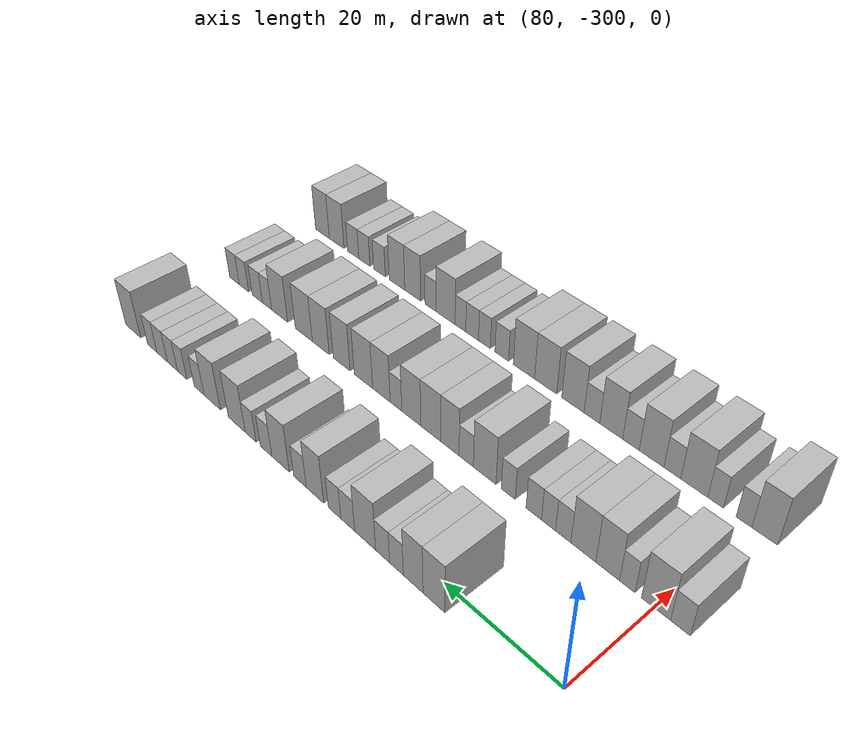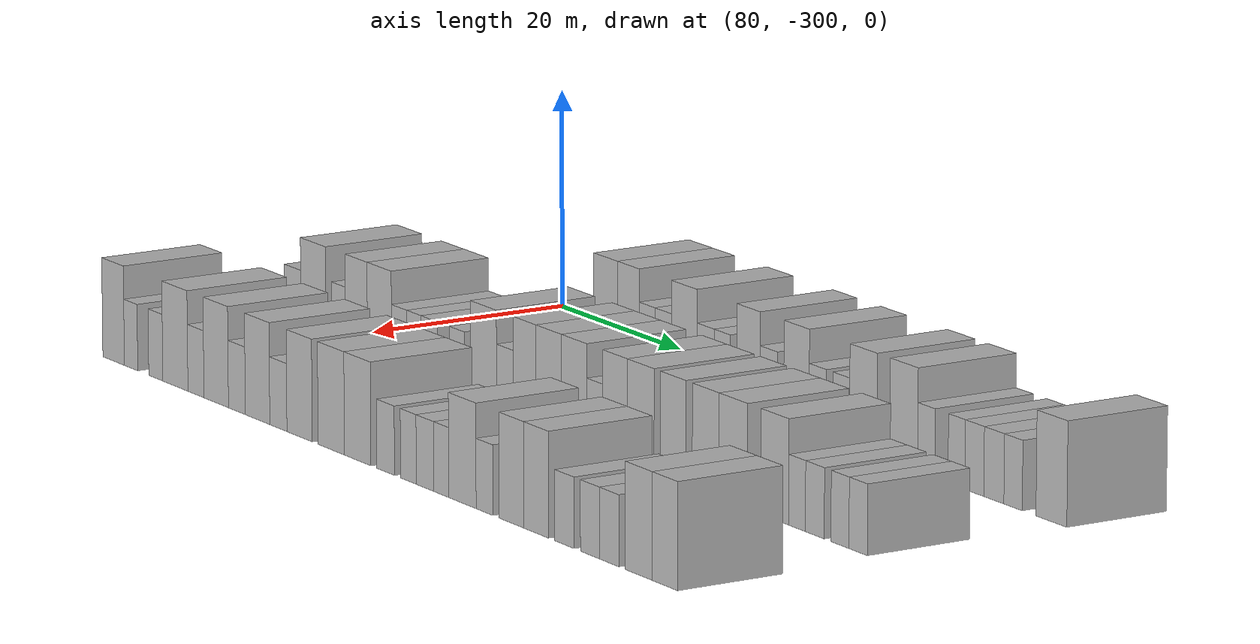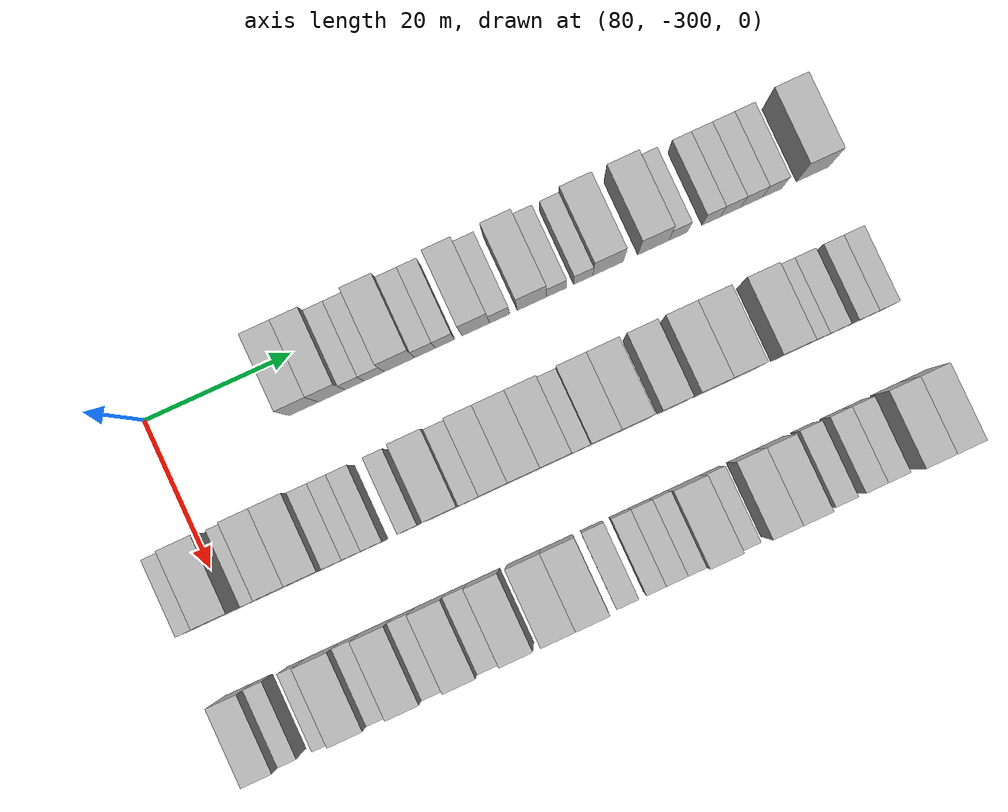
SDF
<sdf version="1.6">
 <world name="default">
  <model name="building_536">
   <static>1</static>
   <pose>82.0000 -281.3900 0 0.000000 0.000000 0.000000</pose>
   <link name="link">
    <pose>0 0 4.50 0 0 0</pose>
    <collision name="collision"><geometry><box><size>10.0000 3.9528 9.0000</size></box></geometry></collision>
    <visual name="visual">
     <cast_shadows>0</cast_shadows>
     <geometry><box><size>10.0000 3.9528 9.0000</size></box></geometry>
     <material>
      <script>
       <uri>model://HANNAS_wall/materials/scripts</uri>
       <uri>model://HANNAS_wall/materials/textures</uri>
       <name>vrc/HANNAS_wall</name>
      </script>
     </material>
    </visual>
   </link>
  </model>
  <model name="building_537">
   <static>1</static>
   <pose>82.0000 -277.6038 0 0.000000 0.000000 0.000000</pose>
   <link name="link">
    <pose>0 0 4.50 0 0 0</pose>
    <collision name="collision"><geometry><box><size>10.0000 3.6196 9.0000</size></box></geometry></collision>
    <visual name="visual">
     <cast_shadows>0</cast_shadows>
     <geometry><box><size>10.0000 3.6196 9.0000</size></box></geometry>
     <material>
      <script>
       <uri>model://HANNAS_wall/materials/scripts</uri>
       <uri>model://HANNAS_wall/materials/textures</uri>
       <name>vrc/HANNAS_wall</name>
      </script>
     </material>
    </visual>
   </link>
  </model>
  <model name="building_538">
   <static>1</static>
   <pose>82.0000 -274.4913 0 0.000000 0.000000 0.000000</pose>
   <link name="link">
    <pose>0 0 3.00 0 0 0</pose>
    <collision name="collision"><geometry><box><size>10.0000 2.6055 6.0000</size></box></geometry></collision>
    <visual name="visual">
     <cast_shadows>0</cast_shadows>
     <geometry><box><size>10.0000 2.6055 6.0000</size></box></geometry>
     <material>
      <script>
       <uri>model://HANNAS_wall/materials/scripts</uri>
       <uri>model://HANNAS_wall/materials/textures</uri>
       <name>vrc/HANNAS_wall</name>
      </script>
     </material>
    </visual>
   </link>
  </model>
  <model name="building_539">
   <static>1</static>
   <pose>82.0000 -271.8295 0 0.000000 0.000000 0.000000</pose>
   <link name="link">
    <pose>0 0 3.00 0 0 0</pose>
    <collision name="collision"><geometry><box><size>10.0000 2.7180 6.0000</size></box></geometry></collision>
    <visual name="visual">
     <cast_shadows>0</cast_shadows>
     <geometry><box><size>10.0000 2.7180 6.0000</size></box></geometry>
     <material>
      <script>
       <uri>model://HANNAS_wall/materials/scripts</uri>
       <uri>model://HANNAS_wall/materials/textures</uri>
       <name>vrc/HANNAS_wall</name>
      </script>
     </material>
    </visual>
   </link>
  </model>
  <model name="building_540">
   <static>1</static>
   <pose>82.0000 -268.3888 0 0.000000 0.000000 0.000000</pose>
   <link name="link">
    <pose>0 0 4.50 0 0 0</pose>
    <collision name="collision"><geometry><box><size>10.0000 4.1634 9.0000</size></box></geometry></collision>
    <visual name="visual">
     <cast_shadows>0</cast_shadows>
     <geometry><box><size>10.0000 4.1634 9.0000</size></box></geometry>
     <material>
      <script>
       <uri>model://HANNAS_wall/materials/scripts</uri>
       <uri>model://HANNAS_wall/materials/textures</uri>
       <name>vrc/HANNAS_wall</name>
      </script>
     </material>
    </visual>
   </link>
  </model>
  <model name="building_541">
   <static>1</static>
   <pose>82.0000 -264.8963 0 0.000000 0.000000 0.000000</pose>
   <link name="link">
    <pose>0 0 3.00 0 0 0</pose>
    <collision name="collision"><geometry><box><size>10.0000 2.8217 6.0000</size></box></geometry></collision>
    <visual name="visual">
     <cast_shadows>0</cast_shadows>
     <geometry><box><size>10.0000 2.8217 6.0000</size></box></geometry>
     <material>
      <script>
       <uri>model://HANNAS_wall/materials/scripts</uri>
       <uri>model://HANNAS_wall/materials/textures</uri>
       <name>vrc/HANNAS_wall</name>
      </script>
     </material>
    </visual>
   </link>
  </model>
  <model name="building_542">
   <static>1</static>
   <pose>82.0000 -262.1801 0 0.000000 0.000000 0.000000</pose>
   <link name="link">
    <pose>0 0 3.00 0 0 0</pose>
    <collision name="collision"><geometry><box><size>10.0000 2.6108 6.0000</size></box></geometry></collision>
    <visual name="visual">
     <cast_shadows>0</cast_shadows>
     <geometry><box><size>10.0000 2.6108 6.0000</size></box></geometry>
     <material>
      <script>
       <uri>model://HANNAS_wall/materials/scripts</uri>
       <uri>model://HANNAS_wall/materials/textures</uri>
       <name>vrc/HANNAS_wall</name>
      </script>
     </material>
    </visual>
   </link>
  </model>
  <model name="building_543">
   <static>1</static>
   <pose>82.0000 -257.9991 0 0.000000 0.000000 0.000000</pose>
   <link name="link">
    <pose>0 0 4.50 0 0 0</pose>
    <collision name="collision"><geometry><box><size>10.0000 3.7512 9.0000</size></box></geometry></collision>
    <visual name="visual">
     <cast_shadows>0</cast_shadows>
     <geometry><box><size>10.0000 3.7512 9.0000</size></box></geometry>
     <material>
      <script>
       <uri>model://HANNAS_wall/materials/scripts</uri>
       <uri>model://HANNAS_wall/materials/textures</uri>
       <name>vrc/HANNAS_wall</name>
      </script>
     </material>
    </visual>
   </link>
  </model>
  <model name="building_544">
   <static>1</static>
   <pose>82.0000 -254.7356 0 0.000000 0.000000 0.000000</pose>
   <link name="link">
    <pose>0 0 3.00 0 0 0</pose>
    <collision name="collision"><geometry><box><size>10.0000 2.7759 6.0000</size></box></geometry></collision>
    <visual name="visual">
     <cast_shadows>0</cast_shadows>
     <geometry><box><size>10.0000 2.7759 6.0000</size></box></geometry>
     <material>
      <script>
       <uri>model://HANNAS_wall/materials/scripts</uri>
       <uri>model://HANNAS_wall/materials/textures</uri>
       <name>vrc/HANNAS_wall</name>
      </script>
     </material>
    </visual>
   </link>
  </model>
  <model name="building_545">
   <static>1</static>
   <pose>82.0000 -250.3482 0 0.000000 0.000000 0.000000</pose>
   <link name="link">
    <pose>0 0 4.50 0 0 0</pose>
    <collision name="collision"><geometry><box><size>10.0000 3.9987 9.0000</size></box></geometry></collision>
    <visual name="visual">
     <cast_shadows>0</cast_shadows>
     <geometry><box><size>10.0000 3.9987 9.0000</size></box></geometry>
     <material>
      <script>
       <uri>model://HANNAS_wall/materials/scripts</uri>
       <uri>model://HANNAS_wall/materials/textures</uri>
       <name>vrc/HANNAS_wall</name>
      </script>
     </material>
    </visual>
   </link>
  </model>
  <model name="building_546">
   <static>1</static>
   <pose>82.0000 -247.0004 0 0.000000 0.000000 0.000000</pose>
   <link name="link">
    <pose>0 0 3.00 0 0 0</pose>
    <collision name="collision"><geometry><box><size>10.0000 2.6969 6.0000</size></box></geometry></collision>
    <visual name="visual">
     <cast_shadows>0</cast_shadows>
     <geometry><box><size>10.0000 2.6969 6.0000</size></box></geometry>
     <material>
      <script>
       <uri>model://HANNAS_wall/materials/scripts</uri>
       <uri>model://HANNAS_wall/materials/textures</uri>
       <name>vrc/HANNAS_wall</name>
      </script>
     </material>
    </visual>
   </link>
  </model>
  <model name="building_547">
   <static>1</static>
   <pose>82.0000 -243.3511 0 0.000000 0.000000 0.000000</pose>
   <link name="link">
    <pose>0 0 3.00 0 0 0</pose>
    <collision name="collision"><geometry><box><size>10.0000 2.6016 6.0000</size></box></geometry></collision>
    <visual name="visual">
     <cast_shadows>0</cast_shadows>
     <geometry><box><size>10.0000 2.6016 6.0000</size></box></geometry>
     <material>
      <script>
       <uri>model://HANNAS_wall/materials/scripts</uri>
       <uri>model://HANNAS_wall/materials/textures</uri>
       <name>vrc/HANNAS_wall</name>
      </script>
     </material>
    </visual>
   </link>
  </model>
  <model name="building_548">
   <static>1</static>
   <pose>82.0000 -239.9524 0 0.000000 0.000000 0.000000</pose>
   <link name="link">
    <pose>0 0 4.50 0 0 0</pose>
    <collision name="collision"><geometry><box><size>10.0000 4.1958 9.0000</size></box></geometry></collision>
    <visual name="visual">
     <cast_shadows>0</cast_shadows>
     <geometry><box><size>10.0000 4.1958 9.0000</size></box></geometry>
     <material>
      <script>
       <uri>model://HANNAS_wall/materials/scripts</uri>
       <uri>model://HANNAS_wall/materials/textures</uri>
       <name>vrc/HANNAS_wall</name>
      </script>
     </material>
    </visual>
   </link>
  </model>
  <model name="building_549">
   <static>1</static>
   <pose>82.0000 -233.7447 0 0.000000 0.000000 0.000000</pose>
   <link name="link">
    <pose>0 0 4.50 0 0 0</pose>
    <collision name="collision"><geometry><box><size>10.0000 4.2197 9.0000</size></box></geometry></collision>
    <visual name="visual">
     <cast_shadows>0</cast_shadows>
     <geometry><box><size>10.0000 4.2197 9.0000</size></box></geometry>
     <material>
      <script>
       <uri>model://HANNAS_wall/materials/scripts</uri>
       <uri>model://HANNAS_wall/materials/textures</uri>
       <name>vrc/HANNAS_wall</name>
      </script>
     </material>
    </visual>
   </link>
  </model>
  <model name="building_550">
   <static>1</static>
   <pose>82.0000 -230.3431 0 0.000000 0.000000 0.000000</pose>
   <link name="link">
    <pose>0 0 3.00 0 0 0</pose>
    <collision name="collision"><geometry><box><size>10.0000 2.5835 6.0000</size></box></geometry></collision>
    <visual name="visual">
     <cast_shadows>0</cast_shadows>
     <geometry><box><size>10.0000 2.5835 6.0000</size></box></geometry>
     <material>
      <script>
       <uri>model://HANNAS_wall/materials/scripts</uri>
       <uri>model://HANNAS_wall/materials/textures</uri>
       <name>vrc/HANNAS_wall</name>
      </script>
     </material>
    </visual>
   </link>
  </model>
  <model name="building_551">
   <static>1</static>
   <pose>82.0000 -225.7896 0 0.000000 0.000000 0.000000</pose>
   <link name="link">
    <pose>0 0 3.00 0 0 0</pose>
    <collision name="collision"><geometry><box><size>10.0000 2.5235 6.0000</size></box></geometry></collision>
    <visual name="visual">
     <cast_shadows>0</cast_shadows>
     <geometry><box><size>10.0000 2.5235 6.0000</size></box></geometry>
     <material>
      <script>
       <uri>model://HANNAS_wall/materials/scripts</uri>
       <uri>model://HANNAS_wall/materials/textures</uri>
       <name>vrc/HANNAS_wall</name>
      </script>
     </material>
    </visual>
   </link>
  </model>
  <model name="building_552">
   <static>1</static>
   <pose>82.0000 -223.1227 0 0.000000 0.000000 0.000000</pose>
   <link name="link">
    <pose>0 0 3.00 0 0 0</pose>
    <collision name="collision"><geometry><box><size>10.0000 2.8103 6.0000</size></box></geometry></collision>
    <visual name="visual">
     <cast_shadows>0</cast_shadows>
     <geometry><box><size>10.0000 2.8103 6.0000</size></box></geometry>
     <material>
      <script>
       <uri>model://HANNAS_wall/materials/scripts</uri>
       <uri>model://HANNAS_wall/materials/textures</uri>
       <name>vrc/HANNAS_wall</name>
      </script>
     </material>
    </visual>
   </link>
  </model>
  <model name="building_553">
   <static>1</static>
   <pose>82.0000 -220.2389 0 0.000000 0.000000 0.000000</pose>
   <link name="link">
    <pose>0 0 3.00 0 0 0</pose>
    <collision name="collision"><geometry><box><size>10.0000 2.9573 6.0000</size></box></geometry></collision>
    <visual name="visual">
     <cast_shadows>0</cast_shadows>
     <geometry><box><size>10.0000 2.9573 6.0000</size></box></geometry>
     <material>
      <script>
       <uri>model://HANNAS_wall/materials/scripts</uri>
       <uri>model://HANNAS_wall/materials/textures</uri>
       <name>vrc/HANNAS_wall</name>
      </script>
     </material>
    </visual>
   </link>
  </model>
  <model name="building_554">
   <static>1</static>
   <pose>82.0000 -217.4114 0 0.000000 0.000000 0.000000</pose>
   <link name="link">
    <pose>0 0 3.00 0 0 0</pose>
    <collision name="collision"><geometry><box><size>10.0000 2.6978 6.0000</size></box></geometry></collision>
    <visual name="visual">
     <cast_shadows>0</cast_shadows>
     <geometry><box><size>10.0000 2.6978 6.0000</size></box></geometry>
     <material>
      <script>
       <uri>model://HANNAS_wall/materials/scripts</uri>
       <uri>model://HANNAS_wall/materials/textures</uri>
       <name>vrc/HANNAS_wall</name>
      </script>
     </material>
    </visual>
   </link>
  </model>
  <model name="building_555">
   <static>1</static>
   <pose>82.0000 -211.8280 0 0.000000 0.000000 0.000000</pose>
   <link name="link">
    <pose>0 0 4.50 0 0 0</pose>
    <collision name="collision"><geometry><box><size>10.0000 4.4690 9.0000</size></box></geometry></collision>
    <visual name="visual">
     <cast_shadows>0</cast_shadows>
     <geometry><box><size>10.0000 4.4690 9.0000</size></box></geometry>
     <material>
      <script>
       <uri>model://HANNAS_wall/materials/scripts</uri>
       <uri>model://HANNAS_wall/materials/textures</uri>
       <name>vrc/HANNAS_wall</name>
      </script>
     </material>
    </visual>
   </link>
  </model>
  <model name="building_715">
   <static>1</static>
   <pose>101.0000 -303.9851 0 0.000000 0.000000 0.000000</pose>
   <link name="link">
    <pose>0 0 3.00 0 0 0</pose>
    <collision name="collision"><geometry><box><size>10.0000 2.9259 6.0000</size></box></geometry></collision>
    <visual name="visual">
     <cast_shadows>0</cast_shadows>
     <geometry><box><size>10.0000 2.9259 6.0000</size></box></geometry>
     <material>
      <script>
       <uri>model://HANNAS_wall/materials/scripts</uri>
       <uri>model://HANNAS_wall/materials/textures</uri>
       <name>vrc/HANNAS_wall</name>
      </script>
     </material>
    </visual>
   </link>
  </model>
  <model name="building_716">
   <static>1</static>
   <pose>101.0000 -300.2934 0 0.000000 0.000000 0.000000</pose>
   <link name="link">
    <pose>0 0 4.50 0 0 0</pose>
    <collision name="collision"><geometry><box><size>10.0000 4.4575 9.0000</size></box></geometry></collision>
    <visual name="visual">
     <cast_shadows>0</cast_shadows>
     <geometry><box><size>10.0000 4.4575 9.0000</size></box></geometry>
     <material>
      <script>
       <uri>model://HANNAS_wall/materials/scripts</uri>
       <uri>model://HANNAS_wall/materials/textures</uri>
       <name>vrc/HANNAS_wall</name>
      </script>
     </material>
    </visual>
   </link>
  </model>
  <model name="building_717">
   <static>1</static>
   <pose>101.0000 -295.8396 0 0.000000 0.000000 0.000000</pose>
   <link name="link">
    <pose>0 0 3.00 0 0 0</pose>
    <collision name="collision"><geometry><box><size>10.0000 2.4501 6.0000</size></box></geometry></collision>
    <visual name="visual">
     <cast_shadows>0</cast_shadows>
     <geometry><box><size>10.0000 2.4501 6.0000</size></box></geometry>
     <material>
      <script>
       <uri>model://HANNAS_wall/materials/scripts</uri>
       <uri>model://HANNAS_wall/materials/textures</uri>
       <name>vrc/HANNAS_wall</name>
      </script>
     </material>
    </visual>
   </link>
  </model>
  <model name="building_718">
   <static>1</static>
   <pose>101.0000 -292.6802 0 0.000000 0.000000 0.000000</pose>
   <link name="link">
    <pose>0 0 4.50 0 0 0</pose>
    <collision name="collision"><geometry><box><size>10.0000 3.8687 9.0000</size></box></geometry></collision>
    <visual name="visual">
     <cast_shadows>0</cast_shadows>
     <geometry><box><size>10.0000 3.8687 9.0000</size></box></geometry>
     <material>
      <script>
       <uri>model://HANNAS_wall/materials/scripts</uri>
       <uri>model://HANNAS_wall/materials/textures</uri>
       <name>vrc/HANNAS_wall</name>
      </script>
     </material>
    </visual>
   </link>
  </model>
  <model name="building_719">
   <static>1</static>
   <pose>101.0000 -288.6435 0 0.000000 0.000000 0.000000</pose>
   <link name="link">
    <pose>0 0 4.50 0 0 0</pose>
    <collision name="collision"><geometry><box><size>10.0000 4.2046 9.0000</size></box></geometry></collision>
    <visual name="visual">
     <cast_shadows>0</cast_shadows>
     <geometry><box><size>10.0000 4.2046 9.0000</size></box></geometry>
     <material>
      <script>
       <uri>model://HANNAS_wall/materials/scripts</uri>
       <uri>model://HANNAS_wall/materials/textures</uri>
       <name>vrc/HANNAS_wall</name>
      </script>
     </material>
    </visual>
   </link>
  </model>
  <model name="building_720">
   <static>1</static>
   <pose>101.0000 -285.2169 0 0.000000 0.000000 0.000000</pose>
   <link name="link">
    <pose>0 0 3.00 0 0 0</pose>
    <collision name="collision"><geometry><box><size>10.0000 2.6486 6.0000</size></box></geometry></collision>
    <visual name="visual">
     <cast_shadows>0</cast_shadows>
     <geometry><box><size>10.0000 2.6486 6.0000</size></box></geometry>
     <material>
      <script>
       <uri>model://HANNAS_wall/materials/scripts</uri>
       <uri>model://HANNAS_wall/materials/textures</uri>
       <name>vrc/HANNAS_wall</name>
      </script>
     </material>
    </visual>
   </link>
  </model>
  <model name="building_721">
   <static>1</static>
   <pose>101.0000 -282.6581 0 0.000000 0.000000 0.000000</pose>
   <link name="link">
    <pose>0 0 3.00 0 0 0</pose>
    <collision name="collision"><geometry><box><size>10.0000 2.4690 6.0000</size></box></geometry></collision>
    <visual name="visual">
     <cast_shadows>0</cast_shadows>
     <geometry><box><size>10.0000 2.4690 6.0000</size></box></geometry>
     <material>
      <script>
       <uri>model://HANNAS_wall/materials/scripts</uri>
       <uri>model://HANNAS_wall/materials/textures</uri>
       <name>vrc/HANNAS_wall</name>
      </script>
     </material>
    </visual>
   </link>
  </model>
  <model name="building_722">
   <static>1</static>
   <pose>101.0000 -280.0353 0 0.000000 0.000000 0.000000</pose>
   <link name="link">
    <pose>0 0 3.00 0 0 0</pose>
    <collision name="collision"><geometry><box><size>10.0000 2.7766 6.0000</size></box></geometry></collision>
    <visual name="visual">
     <cast_shadows>0</cast_shadows>
     <geometry><box><size>10.0000 2.7766 6.0000</size></box></geometry>
     <material>
      <script>
       <uri>model://HANNAS_wall/materials/scripts</uri>
       <uri>model://HANNAS_wall/materials/textures</uri>
       <name>vrc/HANNAS_wall</name>
      </script>
     </material>
    </visual>
   </link>
  </model>
  <model name="building_723">
   <static>1</static>
   <pose>101.0000 -275.3551 0 0.000000 0.000000 0.000000</pose>
   <link name="link">
    <pose>0 0 3.00 0 0 0</pose>
    <collision name="collision"><geometry><box><size>10.0000 2.5836 6.0000</size></box></geometry></collision>
    <visual name="visual">
     <cast_shadows>0</cast_shadows>
     <geometry><box><size>10.0000 2.5836 6.0000</size></box></geometry>
     <material>
      <script>
       <uri>model://HANNAS_wall/materials/scripts</uri>
       <uri>model://HANNAS_wall/materials/textures</uri>
       <name>vrc/HANNAS_wall</name>
      </script>
     </material>
    </visual>
   </link>
  </model>
  <model name="building_724">
   <static>1</static>
   <pose>101.0000 -270.8742 0 0.000000 0.000000 0.000000</pose>
   <link name="link">
    <pose>0 0 4.50 0 0 0</pose>
    <collision name="collision"><geometry><box><size>10.0000 4.3781 9.0000</size></box></geometry></collision>
    <visual name="visual">
     <cast_shadows>0</cast_shadows>
     <geometry><box><size>10.0000 4.3781 9.0000</size></box></geometry>
     <material>
      <script>
       <uri>model://HANNAS_wall/materials/scripts</uri>
       <uri>model://HANNAS_wall/materials/textures</uri>
       <name>vrc/HANNAS_wall</name>
      </script>
     </material>
    </visual>
   </link>
  </model>
  <model name="building_725">
   <static>1</static>
   <pose>101.0000 -267.2647 0 0.000000 0.000000 0.000000</pose>
   <link name="link">
    <pose>0 0 3.00 0 0 0</pose>
    <collision name="collision"><geometry><box><size>10.0000 2.8409 6.0000</size></box></geometry></collision>
    <visual name="visual">
     <cast_shadows>0</cast_shadows>
     <geometry><box><size>10.0000 2.8409 6.0000</size></box></geometry>
     <material>
      <script>
       <uri>model://HANNAS_wall/materials/scripts</uri>
       <uri>model://HANNAS_wall/materials/textures</uri>
       <name>vrc/HANNAS_wall</name>
      </script>
     </material>
    </visual>
   </link>
  </model>
  <model name="building_726">
   <static>1</static>
   <pose>101.0000 -263.9945 0 0.000000 0.000000 0.000000</pose>
   <link name="link">
    <pose>0 0 4.50 0 0 0</pose>
    <collision name="collision"><geometry><box><size>10.0000 3.6994 9.0000</size></box></geometry></collision>
    <visual name="visual">
     <cast_shadows>0</cast_shadows>
     <geometry><box><size>10.0000 3.6994 9.0000</size></box></geometry>
     <material>
      <script>
       <uri>model://HANNAS_wall/materials/scripts</uri>
       <uri>model://HANNAS_wall/materials/textures</uri>
       <name>vrc/HANNAS_wall</name>
      </script>
     </material>
    </visual>
   </link>
  </model>
  <model name="building_727">
   <static>1</static>
   <pose>101.0000 -260.0580 0 0.000000 0.000000 0.000000</pose>
   <link name="link">
    <pose>0 0 4.50 0 0 0</pose>
    <collision name="collision"><geometry><box><size>10.0000 4.1736 9.0000</size></box></geometry></collision>
    <visual name="visual">
     <cast_shadows>0</cast_shadows>
     <geometry><box><size>10.0000 4.1736 9.0000</size></box></geometry>
     <material>
      <script>
       <uri>model://HANNAS_wall/materials/scripts</uri>
       <uri>model://HANNAS_wall/materials/textures</uri>
       <name>vrc/HANNAS_wall</name>
      </script>
     </material>
    </visual>
   </link>
  </model>
  <model name="building_728">
   <static>1</static>
   <pose>101.0000 -255.9211 0 0.000000 0.000000 0.000000</pose>
   <link name="link">
    <pose>0 0 4.50 0 0 0</pose>
    <collision name="collision"><geometry><box><size>10.0000 4.1003 9.0000</size></box></geometry></collision>
    <visual name="visual">
     <cast_shadows>0</cast_shadows>
     <geometry><box><size>10.0000 4.1003 9.0000</size></box></geometry>
     <material>
      <script>
       <uri>model://HANNAS_wall/materials/scripts</uri>
       <uri>model://HANNAS_wall/materials/textures</uri>
       <name>vrc/HANNAS_wall</name>
      </script>
     </material>
    </visual>
   </link>
  </model>
  <model name="building_729">
   <static>1</static>
   <pose>101.0000 -252.5890 0 0.000000 0.000000 0.000000</pose>
   <link name="link">
    <pose>0 0 3.00 0 0 0</pose>
    <collision name="collision"><geometry><box><size>10.0000 2.5638 6.0000</size></box></geometry></collision>
    <visual name="visual">
     <cast_shadows>0</cast_shadows>
     <geometry><box><size>10.0000 2.5638 6.0000</size></box></geometry>
     <material>
      <script>
       <uri>model://HANNAS_wall/materials/scripts</uri>
       <uri>model://HANNAS_wall/materials/textures</uri>
       <name>vrc/HANNAS_wall</name>
      </script>
     </material>
    </visual>
   </link>
  </model>
  <model name="building_730">
   <static>1</static>
   <pose>101.0000 -249.3374 0 0.000000 0.000000 0.000000</pose>
   <link name="link">
    <pose>0 0 4.50 0 0 0</pose>
    <collision name="collision"><geometry><box><size>10.0000 3.9395 9.0000</size></box></geometry></collision>
    <visual name="visual">
     <cast_shadows>0</cast_shadows>
     <geometry><box><size>10.0000 3.9395 9.0000</size></box></geometry>
     <material>
      <script>
       <uri>model://HANNAS_wall/materials/scripts</uri>
       <uri>model://HANNAS_wall/materials/textures</uri>
       <name>vrc/HANNAS_wall</name>
      </script>
     </material>
    </visual>
   </link>
  </model>
  <model name="building_731">
   <static>1</static>
   <pose>101.0000 -245.2372 0 0.000000 0.000000 0.000000</pose>
   <link name="link">
    <pose>0 0 4.50 0 0 0</pose>
    <collision name="collision"><geometry><box><size>10.0000 4.2608 9.0000</size></box></geometry></collision>
    <visual name="visual">
     <cast_shadows>0</cast_shadows>
     <geometry><box><size>10.0000 4.2608 9.0000</size></box></geometry>
     <material>
      <script>
       <uri>model://HANNAS_wall/materials/scripts</uri>
       <uri>model://HANNAS_wall/materials/textures</uri>
       <name>vrc/HANNAS_wall</name>
      </script>
     </material>
    </visual>
   </link>
  </model>
  <model name="building_732">
   <static>1</static>
   <pose>101.0000 -240.1029 0 0.000000 0.000000 0.000000</pose>
   <link name="link">
    <pose>0 0 4.50 0 0 0</pose>
    <collision name="collision"><geometry><box><size>10.0000 4.0078 9.0000</size></box></geometry></collision>
    <visual name="visual">
     <cast_shadows>0</cast_shadows>
     <geometry><box><size>10.0000 4.0078 9.0000</size></box></geometry>
     <material>
      <script>
       <uri>model://HANNAS_wall/materials/scripts</uri>
       <uri>model://HANNAS_wall/materials/textures</uri>
       <name>vrc/HANNAS_wall</name>
      </script>
     </material>
    </visual>
   </link>
  </model>
  <model name="building_733">
   <static>1</static>
   <pose>101.0000 -235.0185 0 0.000000 0.000000 0.000000</pose>
   <link name="link">
    <pose>0 0 4.50 0 0 0</pose>
    <collision name="collision"><geometry><box><size>10.0000 4.1610 9.0000</size></box></geometry></collision>
    <visual name="visual">
     <cast_shadows>0</cast_shadows>
     <geometry><box><size>10.0000 4.1610 9.0000</size></box></geometry>
     <material>
      <script>
       <uri>model://HANNAS_wall/materials/scripts</uri>
       <uri>model://HANNAS_wall/materials/textures</uri>
       <name>vrc/HANNAS_wall</name>
      </script>
     </material>
    </visual>
   </link>
  </model>
  <model name="building_734">
   <static>1</static>
   <pose>101.0000 -230.7456 0 0.000000 0.000000 0.000000</pose>
   <link name="link">
    <pose>0 0 4.50 0 0 0</pose>
    <collision name="collision"><geometry><box><size>10.0000 4.3849 9.0000</size></box></geometry></collision>
    <visual name="visual">
     <cast_shadows>0</cast_shadows>
     <geometry><box><size>10.0000 4.3849 9.0000</size></box></geometry>
     <material>
      <script>
       <uri>model://HANNAS_wall/materials/scripts</uri>
       <uri>model://HANNAS_wall/materials/textures</uri>
       <name>vrc/HANNAS_wall</name>
      </script>
     </material>
    </visual>
   </link>
  </model>
  <model name="building_735">
   <static>1</static>
   <pose>101.0000 -224.4242 0 0.000000 0.000000 0.000000</pose>
   <link name="link">
    <pose>0 0 4.50 0 0 0</pose>
    <collision name="collision"><geometry><box><size>10.0000 4.2579 9.0000</size></box></geometry></collision>
    <visual name="visual">
     <cast_shadows>0</cast_shadows>
     <geometry><box><size>10.0000 4.2579 9.0000</size></box></geometry>
     <material>
      <script>
       <uri>model://HANNAS_wall/materials/scripts</uri>
       <uri>model://HANNAS_wall/materials/textures</uri>
       <name>vrc/HANNAS_wall</name>
      </script>
     </material>
    </visual>
   </link>
  </model>
  <model name="building_736">
   <static>1</static>
   <pose>101.0000 -221.0333 0 0.000000 0.000000 0.000000</pose>
   <link name="link">
    <pose>0 0 3.00 0 0 0</pose>
    <collision name="collision"><geometry><box><size>10.0000 2.5239 6.0000</size></box></geometry></collision>
    <visual name="visual">
     <cast_shadows>0</cast_shadows>
     <geometry><box><size>10.0000 2.5239 6.0000</size></box></geometry>
     <material>
      <script>
       <uri>model://HANNAS_wall/materials/scripts</uri>
       <uri>model://HANNAS_wall/materials/textures</uri>
       <name>vrc/HANNAS_wall</name>
      </script>
     </material>
    </visual>
   </link>
  </model>
  <model name="building_737">
   <static>1</static>
   <pose>101.0000 -218.3628 0 0.000000 0.000000 0.000000</pose>
   <link name="link">
    <pose>0 0 3.00 0 0 0</pose>
    <collision name="collision"><geometry><box><size>10.0000 2.8172 6.0000</size></box></geometry></collision>
    <visual name="visual">
     <cast_shadows>0</cast_shadows>
     <geometry><box><size>10.0000 2.8172 6.0000</size></box></geometry>
     <material>
      <script>
       <uri>model://HANNAS_wall/materials/scripts</uri>
       <uri>model://HANNAS_wall/materials/textures</uri>
       <name>vrc/HANNAS_wall</name>
      </script>
     </material>
    </visual>
   </link>
  </model>
  <model name="building_738">
   <static>1</static>
   <pose>101.0000 -214.6171 0 0.000000 0.000000 0.000000</pose>
   <link name="link">
    <pose>0 0 3.00 0 0 0</pose>
    <collision name="collision"><geometry><box><size>10.0000 2.6740 6.0000</size></box></geometry></collision>
    <visual name="visual">
     <cast_shadows>0</cast_shadows>
     <geometry><box><size>10.0000 2.6740 6.0000</size></box></geometry>
     <material>
      <script>
       <uri>model://HANNAS_wall/materials/scripts</uri>
       <uri>model://HANNAS_wall/materials/textures</uri>
       <name>vrc/HANNAS_wall</name>
      </script>
     </material>
    </visual>
   </link>
  </model>
  <model name="building_739">
   <static>1</static>
   <pose>101.0000 -211.9218 0 0.000000 0.000000 0.000000</pose>
   <link name="link">
    <pose>0 0 3.00 0 0 0</pose>
    <collision name="collision"><geometry><box><size>10.0000 2.7167 6.0000</size></box></geometry></collision>
    <visual name="visual">
     <cast_shadows>0</cast_shadows>
     <geometry><box><size>10.0000 2.7167 6.0000</size></box></geometry>
     <material>
      <script>
       <uri>model://HANNAS_wall/materials/scripts</uri>
       <uri>model://HANNAS_wall/materials/textures</uri>
       <name>vrc/HANNAS_wall</name>
      </script>
     </material>
    </visual>
   </link>
  </model>
  <model name="building_894">
   <static>1</static>
   <pose>120.0000 -302.7715 0 0.000000 0.000000 0.000000</pose>
   <link name="link">
    <pose>0 0 4.50 0 0 0</pose>
    <collision name="collision"><geometry><box><size>10.0000 3.9474 9.0000</size></box></geometry></collision>
    <visual name="visual">
     <cast_shadows>0</cast_shadows>
     <geometry><box><size>10.0000 3.9474 9.0000</size></box></geometry>
     <material>
      <script>
       <uri>model://HANNAS_wall/materials/scripts</uri>
       <uri>model://HANNAS_wall/materials/textures</uri>
       <name>vrc/HANNAS_wall</name>
      </script>
     </material>
    </visual>
   </link>
  </model>
  <model name="building_895">
   <static>1</static>
   <pose>120.0000 -299.5846 0 0.000000 0.000000 0.000000</pose>
   <link name="link">
    <pose>0 0 3.00 0 0 0</pose>
    <collision name="collision"><geometry><box><size>10.0000 2.4263 6.0000</size></box></geometry></collision>
    <visual name="visual">
     <cast_shadows>0</cast_shadows>
     <geometry><box><size>10.0000 2.4263 6.0000</size></box></geometry>
     <material>
      <script>
       <uri>model://HANNAS_wall/materials/scripts</uri>
       <uri>model://HANNAS_wall/materials/textures</uri>
       <name>vrc/HANNAS_wall</name>
      </script>
     </material>
    </visual>
   </link>
  </model>
  <model name="building_896">
   <static>1</static>
   <pose>120.0000 -295.1014 0 0.000000 0.000000 0.000000</pose>
   <link name="link">
    <pose>0 0 3.00 0 0 0</pose>
    <collision name="collision"><geometry><box><size>10.0000 2.5401 6.0000</size></box></geometry></collision>
    <visual name="visual">
     <cast_shadows>0</cast_shadows>
     <geometry><box><size>10.0000 2.5401 6.0000</size></box></geometry>
     <material>
      <script>
       <uri>model://HANNAS_wall/materials/scripts</uri>
       <uri>model://HANNAS_wall/materials/textures</uri>
       <name>vrc/HANNAS_wall</name>
      </script>
     </material>
    </visual>
   </link>
  </model>
  <model name="building_897">
   <static>1</static>
   <pose>120.0000 -291.5820 0 0.000000 0.000000 0.000000</pose>
   <link name="link">
    <pose>0 0 4.50 0 0 0</pose>
    <collision name="collision"><geometry><box><size>10.0000 4.4987 9.0000</size></box></geometry></collision>
    <visual name="visual">
     <cast_shadows>0</cast_shadows>
     <geometry><box><size>10.0000 4.4987 9.0000</size></box></geometry>
     <material>
      <script>
       <uri>model://HANNAS_wall/materials/scripts</uri>
       <uri>model://HANNAS_wall/materials/textures</uri>
       <name>vrc/HANNAS_wall</name>
      </script>
     </material>
    </visual>
   </link>
  </model>
  <model name="building_898">
   <static>1</static>
   <pose>120.0000 -287.9083 0 0.000000 0.000000 0.000000</pose>
   <link name="link">
    <pose>0 0 3.00 0 0 0</pose>
    <collision name="collision"><geometry><box><size>10.0000 2.8487 6.0000</size></box></geometry></collision>
    <visual name="visual">
     <cast_shadows>0</cast_shadows>
     <geometry><box><size>10.0000 2.8487 6.0000</size></box></geometry>
     <material>
      <script>
       <uri>model://HANNAS_wall/materials/scripts</uri>
       <uri>model://HANNAS_wall/materials/textures</uri>
       <name>vrc/HANNAS_wall</name>
      </script>
     </material>
    </visual>
   </link>
  </model>
  <model name="building_899">
   <static>1</static>
   <pose>120.0000 -284.3229 0 0.000000 0.000000 0.000000</pose>
   <link name="link">
    <pose>0 0 4.50 0 0 0</pose>
    <collision name="collision"><geometry><box><size>10.0000 4.3222 9.0000</size></box></geometry></collision>
    <visual name="visual">
     <cast_shadows>0</cast_shadows>
     <geometry><box><size>10.0000 4.3222 9.0000</size></box></geometry>
     <material>
      <script>
       <uri>model://HANNAS_wall/materials/scripts</uri>
       <uri>model://HANNAS_wall/materials/textures</uri>
       <name>vrc/HANNAS_wall</name>
      </script>
     </material>
    </visual>
   </link>
  </model>
  <model name="building_900">
   <static>1</static>
   <pose>120.0000 -280.6824 0 0.000000 0.000000 0.000000</pose>
   <link name="link">
    <pose>0 0 3.00 0 0 0</pose>
    <collision name="collision"><geometry><box><size>10.0000 2.9588 6.0000</size></box></geometry></collision>
    <visual name="visual">
     <cast_shadows>0</cast_shadows>
     <geometry><box><size>10.0000 2.9588 6.0000</size></box></geometry>
     <material>
      <script>
       <uri>model://HANNAS_wall/materials/scripts</uri>
       <uri>model://HANNAS_wall/materials/textures</uri>
       <name>vrc/HANNAS_wall</name>
      </script>
     </material>
    </visual>
   </link>
  </model>
  <model name="building_901">
   <static>1</static>
   <pose>120.0000 -277.0782 0 0.000000 0.000000 0.000000</pose>
   <link name="link">
    <pose>0 0 4.50 0 0 0</pose>
    <collision name="collision"><geometry><box><size>10.0000 4.2496 9.0000</size></box></geometry></collision>
    <visual name="visual">
     <cast_shadows>0</cast_shadows>
     <geometry><box><size>10.0000 4.2496 9.0000</size></box></geometry>
     <material>
      <script>
       <uri>model://HANNAS_wall/materials/scripts</uri>
       <uri>model://HANNAS_wall/materials/textures</uri>
       <name>vrc/HANNAS_wall</name>
      </script>
     </material>
    </visual>
   </link>
  </model>
  <model name="building_902">
   <static>1</static>
   <pose>120.0000 -273.4758 0 0.000000 0.000000 0.000000</pose>
   <link name="link">
    <pose>0 0 3.00 0 0 0</pose>
    <collision name="collision"><geometry><box><size>10.0000 2.9551 6.0000</size></box></geometry></collision>
    <visual name="visual">
     <cast_shadows>0</cast_shadows>
     <geometry><box><size>10.0000 2.9551 6.0000</size></box></geometry>
     <material>
      <script>
       <uri>model://HANNAS_wall/materials/scripts</uri>
       <uri>model://HANNAS_wall/materials/textures</uri>
       <name>vrc/HANNAS_wall</name>
      </script>
     </material>
    </visual>
   </link>
  </model>
  <model name="building_903">
   <static>1</static>
   <pose>120.0000 -269.8325 0 0.000000 0.000000 0.000000</pose>
   <link name="link">
    <pose>0 0 4.50 0 0 0</pose>
    <collision name="collision"><geometry><box><size>10.0000 4.3317 9.0000</size></box></geometry></collision>
    <visual name="visual">
     <cast_shadows>0</cast_shadows>
     <geometry><box><size>10.0000 4.3317 9.0000</size></box></geometry>
     <material>
      <script>
       <uri>model://HANNAS_wall/materials/scripts</uri>
       <uri>model://HANNAS_wall/materials/textures</uri>
       <name>vrc/HANNAS_wall</name>
      </script>
     </material>
    </visual>
   </link>
  </model>
  <model name="building_904">
   <static>1</static>
   <pose>120.0000 -264.4391 0 0.000000 0.000000 0.000000</pose>
   <link name="link">
    <pose>0 0 4.50 0 0 0</pose>
    <collision name="collision"><geometry><box><size>10.0000 4.4552 9.0000</size></box></geometry></collision>
    <visual name="visual">
     <cast_shadows>0</cast_shadows>
     <geometry><box><size>10.0000 4.4552 9.0000</size></box></geometry>
     <material>
      <script>
       <uri>model://HANNAS_wall/materials/scripts</uri>
       <uri>model://HANNAS_wall/materials/textures</uri>
       <name>vrc/HANNAS_wall</name>
      </script>
     </material>
    </visual>
   </link>
  </model>
  <model name="building_905">
   <static>1</static>
   <pose>120.0000 -260.0016 0 0.000000 0.000000 0.000000</pose>
   <link name="link">
    <pose>0 0 4.50 0 0 0</pose>
    <collision name="collision"><geometry><box><size>10.0000 4.4197 9.0000</size></box></geometry></collision>
    <visual name="visual">
     <cast_shadows>0</cast_shadows>
     <geometry><box><size>10.0000 4.4197 9.0000</size></box></geometry>
     <material>
      <script>
       <uri>model://HANNAS_wall/materials/scripts</uri>
       <uri>model://HANNAS_wall/materials/textures</uri>
       <name>vrc/HANNAS_wall</name>
      </script>
     </material>
    </visual>
   </link>
  </model>
  <model name="building_906">
   <static>1</static>
   <pose>120.0000 -255.3297 0 0.000000 0.000000 0.000000</pose>
   <link name="link">
    <pose>0 0 3.00 0 0 0</pose>
    <collision name="collision"><geometry><box><size>10.0000 2.9242 6.0000</size></box></geometry></collision>
    <visual name="visual">
     <cast_shadows>0</cast_shadows>
     <geometry><box><size>10.0000 2.9242 6.0000</size></box></geometry>
     <material>
      <script>
       <uri>model://HANNAS_wall/materials/scripts</uri>
       <uri>model://HANNAS_wall/materials/textures</uri>
       <name>vrc/HANNAS_wall</name>
      </script>
     </material>
    </visual>
   </link>
  </model>
  <model name="building_907">
   <static>1</static>
   <pose>120.0000 -251.5728 0 0.000000 0.000000 0.000000</pose>
   <link name="link">
    <pose>0 0 3.00 0 0 0</pose>
    <collision name="collision"><geometry><box><size>10.0000 2.5895 6.0000</size></box></geometry></collision>
    <visual name="visual">
     <cast_shadows>0</cast_shadows>
     <geometry><box><size>10.0000 2.5895 6.0000</size></box></geometry>
     <material>
      <script>
       <uri>model://HANNAS_wall/materials/scripts</uri>
       <uri>model://HANNAS_wall/materials/textures</uri>
       <name>vrc/HANNAS_wall</name>
      </script>
     </material>
    </visual>
   </link>
  </model>
  <model name="building_908">
   <static>1</static>
   <pose>120.0000 -248.8504 0 0.000000 0.000000 0.000000</pose>
   <link name="link">
    <pose>0 0 3.00 0 0 0</pose>
    <collision name="collision"><geometry><box><size>10.0000 2.8553 6.0000</size></box></geometry></collision>
    <visual name="visual">
     <cast_shadows>0</cast_shadows>
     <geometry><box><size>10.0000 2.8553 6.0000</size></box></geometry>
     <material>
      <script>
       <uri>model://HANNAS_wall/materials/scripts</uri>
       <uri>model://HANNAS_wall/materials/textures</uri>
       <name>vrc/HANNAS_wall</name>
      </script>
     </material>
    </visual>
   </link>
  </model>
  <model name="building_909">
   <static>1</static>
   <pose>120.0000 -246.2065 0 0.000000 0.000000 0.000000</pose>
   <link name="link">
    <pose>0 0 3.00 0 0 0</pose>
    <collision name="collision"><geometry><box><size>10.0000 2.4325 6.0000</size></box></geometry></collision>
    <visual name="visual">
     <cast_shadows>0</cast_shadows>
     <geometry><box><size>10.0000 2.4325 6.0000</size></box></geometry>
     <material>
      <script>
       <uri>model://HANNAS_wall/materials/scripts</uri>
       <uri>model://HANNAS_wall/materials/textures</uri>
       <name>vrc/HANNAS_wall</name>
      </script>
     </material>
    </visual>
   </link>
  </model>
  <model name="building_910">
   <static>1</static>
   <pose>120.0000 -242.7782 0 0.000000 0.000000 0.000000</pose>
   <link name="link">
    <pose>0 0 4.50 0 0 0</pose>
    <collision name="collision"><geometry><box><size>10.0000 4.4240 9.0000</size></box></geometry></collision>
    <visual name="visual">
     <cast_shadows>0</cast_shadows>
     <geometry><box><size>10.0000 4.4240 9.0000</size></box></geometry>
     <material>
      <script>
       <uri>model://HANNAS_wall/materials/scripts</uri>
       <uri>model://HANNAS_wall/materials/textures</uri>
       <name>vrc/HANNAS_wall</name>
      </script>
     </material>
    </visual>
   </link>
  </model>
  <model name="building_911">
   <static>1</static>
   <pose>120.0000 -239.2299 0 0.000000 0.000000 0.000000</pose>
   <link name="link">
    <pose>0 0 3.00 0 0 0</pose>
    <collision name="collision"><geometry><box><size>10.0000 2.6727 6.0000</size></box></geometry></collision>
    <visual name="visual">
     <cast_shadows>0</cast_shadows>
     <geometry><box><size>10.0000 2.6727 6.0000</size></box></geometry>
     <material>
      <script>
       <uri>model://HANNAS_wall/materials/scripts</uri>
       <uri>model://HANNAS_wall/materials/textures</uri>
       <name>vrc/HANNAS_wall</name>
      </script>
     </material>
    </visual>
   </link>
  </model>
  <model name="building_912">
   <static>1</static>
   <pose>120.0000 -234.9391 0 0.000000 0.000000 0.000000</pose>
   <link name="link">
    <pose>0 0 4.50 0 0 0</pose>
    <collision name="collision"><geometry><box><size>10.0000 3.9089 9.0000</size></box></geometry></collision>
    <visual name="visual">
     <cast_shadows>0</cast_shadows>
     <geometry><box><size>10.0000 3.9089 9.0000</size></box></geometry>
     <material>
      <script>
       <uri>model://HANNAS_wall/materials/scripts</uri>
       <uri>model://HANNAS_wall/materials/textures</uri>
       <name>vrc/HANNAS_wall</name>
      </script>
     </material>
    </visual>
   </link>
  </model>
  <model name="building_913">
   <static>1</static>
   <pose>120.0000 -231.0409 0 0.000000 0.000000 0.000000</pose>
   <link name="link">
    <pose>0 0 4.50 0 0 0</pose>
    <collision name="collision"><geometry><box><size>10.0000 3.8876 9.0000</size></box></geometry></collision>
    <visual name="visual">
     <cast_shadows>0</cast_shadows>
     <geometry><box><size>10.0000 3.8876 9.0000</size></box></geometry>
     <material>
      <script>
       <uri>model://HANNAS_wall/materials/scripts</uri>
       <uri>model://HANNAS_wall/materials/textures</uri>
       <name>vrc/HANNAS_wall</name>
      </script>
     </material>
    </visual>
   </link>
  </model>
  <model name="building_914">
   <static>1</static>
   <pose>120.0000 -226.6091 0 0.000000 0.000000 0.000000</pose>
   <link name="link">
    <pose>0 0 3.00 0 0 0</pose>
    <collision name="collision"><geometry><box><size>10.0000 2.9760 6.0000</size></box></geometry></collision>
    <visual name="visual">
     <cast_shadows>0</cast_shadows>
     <geometry><box><size>10.0000 2.9760 6.0000</size></box></geometry>
     <material>
      <script>
       <uri>model://HANNAS_wall/materials/scripts</uri>
       <uri>model://HANNAS_wall/materials/textures</uri>
       <name>vrc/HANNAS_wall</name>
      </script>
     </material>
    </visual>
   </link>
  </model>
  <model name="building_915">
   <static>1</static>
   <pose>120.0000 -222.6587 0 0.000000 0.000000 0.000000</pose>
   <link name="link">
    <pose>0 0 3.00 0 0 0</pose>
    <collision name="collision"><geometry><box><size>10.0000 2.9248 6.0000</size></box></geometry></collision>
    <visual name="visual">
     <cast_shadows>0</cast_shadows>
     <geometry><box><size>10.0000 2.9248 6.0000</size></box></geometry>
     <material>
      <script>
       <uri>model://HANNAS_wall/materials/scripts</uri>
       <uri>model://HANNAS_wall/materials/textures</uri>
       <name>vrc/HANNAS_wall</name>
      </script>
     </material>
    </visual>
   </link>
  </model>
  <model name="building_916">
   <static>1</static>
   <pose>120.0000 -219.7122 0 0.000000 0.000000 0.000000</pose>
   <link name="link">
    <pose>0 0 3.00 0 0 0</pose>
    <collision name="collision"><geometry><box><size>10.0000 2.9683 6.0000</size></box></geometry></collision>
    <visual name="visual">
     <cast_shadows>0</cast_shadows>
     <geometry><box><size>10.0000 2.9683 6.0000</size></box></geometry>
     <material>
      <script>
       <uri>model://HANNAS_wall/materials/scripts</uri>
       <uri>model://HANNAS_wall/materials/textures</uri>
       <name>vrc/HANNAS_wall</name>
      </script>
     </material>
    </visual>
   </link>
  </model>
  <model name="building_917">
   <static>1</static>
   <pose>120.0000 -215.2003 0 0.000000 0.000000 0.000000</pose>
   <link name="link">
    <pose>0 0 4.50 0 0 0</pose>
    <collision name="collision"><geometry><box><size>10.0000 4.0554 9.0000</size></box></geometry></collision>
    <visual name="visual">
     <cast_shadows>0</cast_shadows>
     <geometry><box><size>10.0000 4.0554 9.0000</size></box></geometry>
     <material>
      <script>
       <uri>model://HANNAS_wall/materials/scripts</uri>
       <uri>model://HANNAS_wall/materials/textures</uri>
       <name>vrc/HANNAS_wall</name>
      </script>
     </material>
    </visual>
   </link>
  </model>
  <model name="building_918">
   <static>1</static>
   <pose>120.0000 -211.2502 0 0.000000 0.000000 0.000000</pose>
   <link name="link">
    <pose>0 0 4.50 0 0 0</pose>
    <collision name="collision"><geometry><box><size>10.0000 3.8449 9.0000</size></box></geometry></collision>
    <visual name="visual">
     <cast_shadows>0</cast_shadows>
     <geometry><box><size>10.0000 3.8449 9.0000</size></box></geometry>
     <material>
      <script>
       <uri>model://HANNAS_wall/materials/scripts</uri>
       <uri>model://HANNAS_wall/materials/textures</uri>
       <name>vrc/HANNAS_wall</name>
      </script>
     </material>
    </visual>
   </link>
  </model>
 </world>
</sdf>
